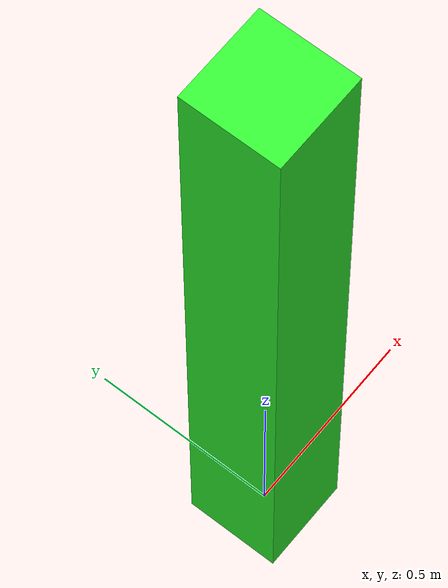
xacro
<?xml version="1.0"?>
<robot xmlns:xacro="http://www.ros.org/wiki/xacro" name="prism">

    <!-- This is an example of a URDF. -->
    <!-- As we move through the file, new things to note will be pointed out. -->
    <!-- It's not meant an example of GOOD design, but an example of some of the various features of URDF/xacro. -->

    <!-- This will include all the contents of example_include.xacro first. Go check it out! -->
    <xacro:include filename="exinclude.xacro" />

    <link name="world">
    </link>

    <!-- A simple fixed joint from our empty world link, to our base. -->
    <!-- The base origin is offset from the world origin. -->
    <joint name="base" type="fixed">
        <origin xyz="0 0 0" rpy="0 0 0"/>
        <parent link="world"/>
        <child link="base_link"/>
    </joint>

    <!-- base_link is a large rectangular plate. Some things to note: -->
    <!-- - We set the visual origin Z to half the box height, so that the link origin sits at the bottom of the box -->
    <!-- - We set the collision to be identical to the visual -->
    <!-- - We specified the colour manually (but still need to enter a name) -->
    <!-- - We specified all the inertial parameters manually -->
    <link name="base_link">
        <visual>
            <origin xyz="0 0 0.05" rpy="0 0 0"/>
            <geometry>
                <box size="0 0 0" />
            </geometry>
            <material name="green">
                <color rgba="0.2 1 0.2 1"/>
            </material>
        </visual>
        <collision>
            <origin xyz="0 0 0.05" rpy="0 0 0"/>
            <geometry>
                <box size="0 0 0" />
            </geometry>
        </collision>
        <inertial>
            <origin xyz="0 0 0.05" rpy="0 0 0"/>
            <mass value="12" />
            <inertia ixx="2.26" ixy="0.0" ixz="0.0" iyy="6.26" iyz="0.0" izz="8.5" />
        </inertial>
    </link>

    <joint name="movingCubex" type="prismatic">
        <origin rpy="0 0 0" xyz="0 0 0"/>
        <parent link="base_link"/>
        <child link="prism_link1"/>
        <axis xyz = "1 0 0"/>
        <limit lower="-100" upper="100" velocity="100" effort="100"/>
    </joint>

    <link name="prism_link1">
        <visual>
            <origin xyz="0 0 0" rpy="0 0 0"/>
            <geometry>
                <box size="0. 0.0 0" />
            </geometry>
            <material name="green">
                <color rgba="0.2 1 0.2 1"/>
            </material>
        </visual>
        <collision>
            <origin xyz="0 0 0.05" rpy="0 0 0"/>
            <geometry>
                <box size="0 0 0" />
            </geometry>
        </collision>
        <inertial>
            <origin xyz="0 0 1" rpy="0 0 0"/>
            <mass value="12" />
            <inertia ixx="2.26" ixy="0.0" ixz="0.0" iyy="6.26" iyz="0.0" izz="8.5" />
        </inertial>
    </link>

    <joint name="movingCubey" type="prismatic">
        <origin rpy="0 0 0" xyz="0 0 0"/>
        <parent link="prism_link1"/>
        <child link="prism_link2"/>
        <axis xyz = "0 1 0"/>
        <limit lower="-100" upper="100" velocity="100" effort="100"/>
    </joint>

    <link name="prism_link2">
        <visual>
            <origin xyz="0 0 1" rpy="0 0 0"/>
            <geometry>
                <box size="0.25 0.25 2" />
            </geometry>
            <material name="green">
                <color rgba="0.2 1 0.2 1"/>
            </material>
        </visual>
        <collision>
            <origin xyz="0 0 0" rpy="0 0 0"/>
            <geometry>
                <box size="0 0 0" />
            </geometry>
        </collision>
        <inertial>
            <origin xyz="0 0 1" rpy="0 0 0"/>
            <mass value="12" />
            <inertia ixx="2.26" ixy="0.0" ixz="0.0" iyy="6.26" iyz="0.0" izz="8.5" />
        </inertial>
    </link>

    <xacro:include filename="exgazebo.xacro" />

</robot>

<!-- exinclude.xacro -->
<robot xmlns:xacro="http://www.ros.org/wiki/xacro" >

    <!-- This file is not a robot in and of itself, it just contains some useful tags that could be included in any robot -->

    <!-- Specify some colours -->

    <material name="white">
        <color rgba="1 1 1 1"/>
    </material>

    <material name="orange">
        <color rgba="1 0.3 0.1 1"/>
    </material>

    <material name="blue">
        <color rgba="0.2 0.2 1 1"/>
    </material>

    <!-- Specify some standard inertial calculations https://en.wikipedia.org/wiki/List_of_moments_of_inertia -->
    <!-- These make use of xacro's mathematical functionality -->

    <xacro:macro name="inertial_sphere" params="mass radius *origin">
        <inertial>
            <xacro:insert_block name="origin"/>
            <mass value="${mass}" />
            <inertia ixx="${(2/5) * mass * (radius*radius)}" ixy="0.0" ixz="0.0"
                    iyy="${(2/5) * mass * (radius*radius)}" iyz="0.0"
                    izz="${(2/5) * mass * (radius*radius)}" />
        </inertial>
    </xacro:macro>

    <xacro:macro name="inertial_gazebo" params="mass x y z *origin">
        <inertial>
            <xacro:insert_block name="origin"/>
            <mass value="${mass}" />
            <inertia ixx="${(1/12) * mass * (y*y+z*z)}" ixy="0.0" ixz="0.0"
                    iyy="${(1/12) * mass * (x*x+z*z)}" iyz="0.0"
                    izz="${(1/12) * mass * (x*x+y*y)}" />
        </inertial>
    </xacro:macro>

    <xacro:macro name="inertial_cylinder" params="mass length radius *origin">
        <inertial>
            <xacro:insert_block name="origin"/>
            <mass value="${mass}" />
            <inertia ixx="${(1/12) * mass * (3*radius*radius + length*length)}" ixy="0.0" ixz="0.0"
                    iyy="${(1/12) * mass * (3*radius*radius + length*length)}" iyz="0.0"
                    izz="${(1/2) * mass * (radius*radius)}" />
        </inertial>
    </xacro:macro>

</robot>
